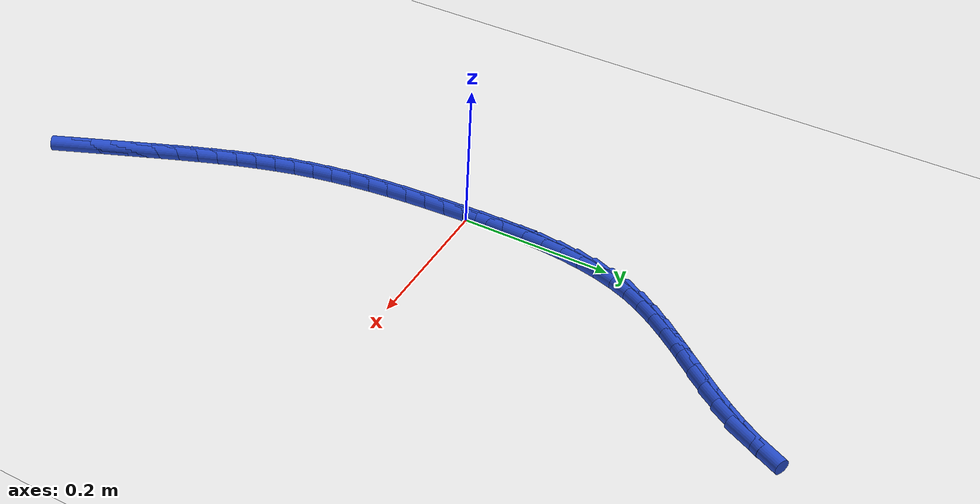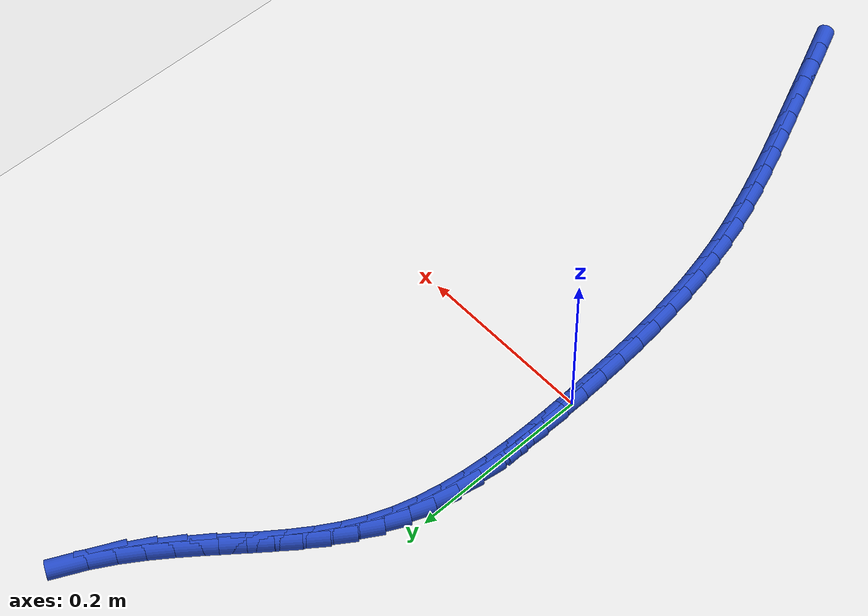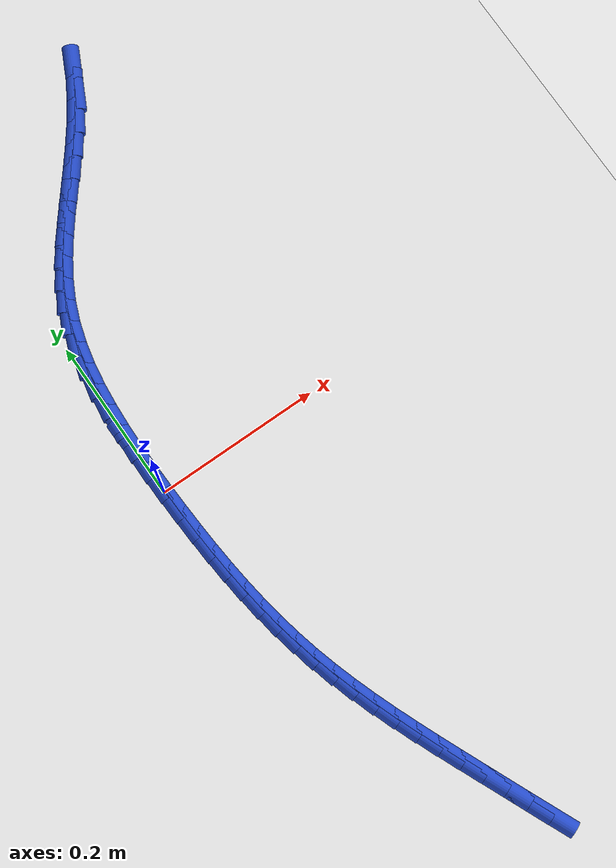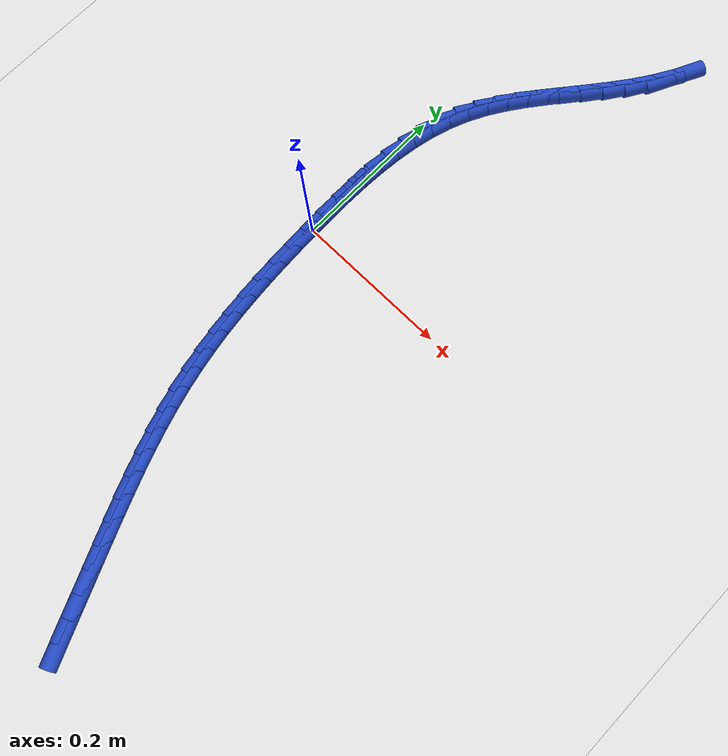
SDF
<sdf version="1.6">
 <world name="default">
  <model name="ground_plane">
   <static>1</static>
   <link name="link">
    <collision name="collision">
     <geometry><plane><normal>0 0 1</normal><size>100 100</size></plane></geometry>
     <surface><friction><ode><mu>100</mu><mu2>50</mu2></ode></friction></surface>
    </collision>
    <visual name="visual">
     <cast_shadows>0</cast_shadows>
     <geometry><plane><normal>0 0 1</normal><size>100 100</size></plane></geometry>
     <material>
      <script><uri>file://media/materials/scripts/gazebo.material</uri><name>Gazebo/WhiteGlow</name></script>
     </material>
    </visual>
   </link>
  </model>
  <model name="line">
   <link name="link_0">
    <pose>-1.5693826446727677e-17 -1.3877787807814457e-17 0.01 0 1.57 -1.5442963593698043</pose>
    <collision name="collision">
     <geometry><cylinder><radius>0.01</radius><length>0.08</length></cylinder></geometry>
    </collision>
    <visual name="visual">
     <material>
      <script><name>Gazebo/Blue</name><uri>file://media/materials/scripts/gazebo.material</uri></script>
     </material>
     <geometry><cylinder><radius>0.01</radius><length>0.08</length></cylinder></geometry>
    </visual>
   </link>
   <link name="link_1">
    <pose>-0.0007509376700477876 0.02833067181607468 0.01 0 1.57 -1.5626476190349388</pose>
    <collision name="collision">
     <geometry><cylinder><radius>0.01</radius><length>0.08</length></cylinder></geometry>
    </collision>
    <visual name="visual">
     <material>
      <script><name>Gazebo/Blue</name><uri>file://media/materials/scripts/gazebo.material</uri></script>
     </material>
     <geometry><cylinder><radius>0.01</radius><length>0.08</length></cylinder></geometry>
    </visual>
   </link>
   <link name="link_2">
    <pose>-0.0009825066827467725 0.056747924464282895 0.01 0 1.57 1.5526250393749008</pose>
    <collision name="collision">
     <geometry><cylinder><radius>0.01</radius><length>0.08</length></cylinder></geometry>
    </collision>
    <visual name="visual">
     <material>
      <script><name>Gazebo/Blue</name><uri>file://media/materials/scripts/gazebo.material</uri></script>
     </material>
     <geometry><cylinder><radius>0.01</radius><length>0.08</length></cylinder></geometry>
    </visual>
   </link>
   <link name="link_3">
    <pose>-0.0004676212184539076 0.08507991768851372 0.01 0 1.57 1.517829657913235</pose>
    <collision name="collision">
     <geometry><cylinder><radius>0.01</radius><length>0.08</length></cylinder></geometry>
    </collision>
    <visual name="visual">
     <material>
      <script><name>Gazebo/Blue</name><uri>file://media/materials/scripts/gazebo.material</uri></script>
     </material>
     <geometry><cylinder><radius>0.01</radius><length>0.08</length></cylinder></geometry>
    </visual>
   </link>
   <link name="link_4">
    <pose>0.0010208045424738691 0.11315481123265635 0.01 0 1.57 1.4738338781834048</pose>
    <collision name="collision">
     <geometry><cylinder><radius>0.01</radius><length>0.08</length></cylinder></geometry>
    </collision>
    <visual name="visual">
     <material>
      <script><name>Gazebo/Blue</name><uri>file://media/materials/scripts/gazebo.material</uri></script>
     </material>
     <geometry><cylinder><radius>0.01</radius><length>0.08</length></cylinder></geometry>
    </visual>
   </link>
   <link name="link_5">
    <pose>0.003709856419679622 0.14080076484059975 0.01 0 1.57 1.4197378369679456</pose>
    <collision name="collision">
     <geometry><cylinder><radius>0.01</radius><length>0.08</length></cylinder></geometry>
    </collision>
    <visual name="visual">
     <material>
      <script><name>Gazebo/Blue</name><uri>file://media/materials/scripts/gazebo.material</uri></script>
     </material>
     <geometry><cylinder><radius>0.01</radius><length>0.08</length></cylinder></geometry>
    </visual>
   </link>
   <link name="link_6">
    <pose>0.007826620232806412 0.16784593825623315 0.01 0 1.57 1.354551010323729</pose>
    <collision name="collision">
     <geometry><cylinder><radius>0.01</radius><length>0.08</length></cylinder></geometry>
    </collision>
    <visual name="visual">
     <material>
      <script><name>Gazebo/Blue</name><uri>file://media/materials/scripts/gazebo.material</uri></script>
     </material>
     <geometry><cylinder><radius>0.01</radius><length>0.08</length></cylinder></geometry>
    </visual>
   </link>
   <link name="link_7">
    <pose>0.013598181801497303 0.19411849122344563 0.01 0 1.57 1.2773478894778796</pose>
    <collision name="collision">
     <geometry><cylinder><radius>0.01</radius><length>0.08</length></cylinder></geometry>
    </collision>
    <visual name="visual">
     <material>
      <script><name>Gazebo/Blue</name><uri>file://media/materials/scripts/gazebo.material</uri></script>
     </material>
     <geometry><cylinder><radius>0.01</radius><length>0.08</length></cylinder></geometry>
    </visual>
   </link>
   <link name="link_8">
    <pose>0.02125162694539536 0.21944658348612625 0.01 0 1.57 1.1875553763427937</pose>
    <collision name="collision">
     <geometry><cylinder><radius>0.01</radius><length>0.08</length></cylinder></geometry>
    </collision>
    <visual name="visual">
     <material>
      <script><name>Gazebo/Blue</name><uri>file://media/materials/scripts/gazebo.material</uri></script>
     </material>
     <geometry><cylinder><radius>0.01</radius><length>0.08</length></cylinder></geometry>
    </visual>
   </link>
   <link name="link_9">
    <pose>0.031013412464680493 0.24365882709709122 0.01 0 1.57 1.0931232626299046</pose>
    <collision name="collision">
     <geometry><cylinder><radius>0.01</radius><length>0.08</length></cylinder></geometry>
    </collision>
    <visual name="visual">
     <material>
      <script><name>Gazebo/Blue</name><uri>file://media/materials/scripts/gazebo.material</uri></script>
     </material>
     <geometry><cylinder><radius>0.01</radius><length>0.08</length></cylinder></geometry>
    </visual>
   </link>
   <link name="link_10">
    <pose>0.04294289728708785 0.2667039891501601 0.01 0 1.57 1.013885816237489</pose>
    <collision name="collision">
     <geometry><cylinder><radius>0.01</radius><length>0.08</length></cylinder></geometry>
    </collision>
    <visual name="visual">
     <material>
      <script><name>Gazebo/Blue</name><uri>file://media/materials/scripts/gazebo.material</uri></script>
     </material>
     <geometry><cylinder><radius>0.01</radius><length>0.08</length></cylinder></geometry>
    </visual>
   </link>
   <link name="link_11">
    <pose>0.0567085049656953 0.2888119465778625 0.01 0 1.57 0.9536576537914302</pose>
    <collision name="collision">
     <geometry><cylinder><radius>0.01</radius><length>0.08</length></cylinder></geometry>
    </collision>
    <visual name="visual">
     <material>
      <script><name>Gazebo/Blue</name><uri>file://media/materials/scripts/gazebo.material</uri></script>
     </material>
     <geometry><cylinder><radius>0.01</radius><length>0.08</length></cylinder></geometry>
    </visual>
   </link>
   <link name="link_12">
    <pose>0.07192283602420142 0.3102527169697327 0.01 0 1.57 0.9124707648080158</pose>
    <collision name="collision">
     <geometry><cylinder><radius>0.01</radius><length>0.08</length></cylinder></geometry>
    </collision>
    <visual name="visual">
     <material>
      <script><name>Gazebo/Blue</name><uri>file://media/materials/scripts/gazebo.material</uri></script>
     </material>
     <geometry><cylinder><radius>0.01</radius><length>0.08</length></cylinder></geometry>
    </visual>
   </link>
   <link name="link_13">
    <pose>0.08819849098630482 0.33129631791530484 0.01 0 1.57 0.8897780737212941</pose>
    <collision name="collision">
     <geometry><cylinder><radius>0.01</radius><length>0.08</length></cylinder></geometry>
    </collision>
    <visual name="visual">
     <material>
      <script><name>Gazebo/Blue</name><uri>file://media/materials/scripts/gazebo.material</uri></script>
     </material>
     <geometry><cylinder><radius>0.01</radius><length>0.08</length></cylinder></geometry>
    </visual>
   </link>
   <link name="link_14">
    <pose>0.10514807037570413 0.3522127670041131 0.01 0 1.57 0.8849031187614891</pose>
    <collision name="collision">
     <geometry><cylinder><radius>0.01</radius><length>0.08</length></cylinder></geometry>
    </collision>
    <visual name="visual">
     <material>
      <script><name>Gazebo/Blue</name><uri>file://media/materials/scripts/gazebo.material</uri></script>
     </material>
     <geometry><cylinder><radius>0.01</radius><length>0.08</length></cylinder></geometry>
    </visual>
   </link>
   <link name="link_15">
    <pose>0.12238417471609796 0.37327208182569166 0.01 0 1.57 0.8972642594297092</pose>
    <collision name="collision">
     <geometry><cylinder><radius>0.01</radius><length>0.08</length></cylinder></geometry>
    </collision>
    <visual name="visual">
     <material>
      <script><name>Gazebo/Blue</name><uri>file://media/materials/scripts/gazebo.material</uri></script>
     </material>
     <geometry><cylinder><radius>0.01</radius><length>0.08</length></cylinder></geometry>
    </visual>
   </link>
   <link name="link_16">
    <pose>0.1395194045311849 0.3947442799695746 0.01 0 1.57 0.9264109444927395</pose>
    <collision name="collision">
     <geometry><cylinder><radius>0.01</radius><length>0.08</length></cylinder></geometry>
    </collision>
    <visual name="visual">
     <material>
      <script><name>Gazebo/Blue</name><uri>file://media/materials/scripts/gazebo.material</uri></script>
     </material>
     <geometry><cylinder><radius>0.01</radius><length>0.08</length></cylinder></geometry>
    </visual>
   </link>
   <link name="link_17">
    <pose>0.1561663603446636 0.41689937902529645 0.01 0 1.57 0.9719103549272091</pose>
    <collision name="collision">
     <geometry><cylinder><radius>0.01</radius><length>0.08</length></cylinder></geometry>
    </collision>
    <visual name="visual">
     <material>
      <script><name>Gazebo/Blue</name><uri>file://media/materials/scripts/gazebo.material</uri></script>
     </material>
     <geometry><cylinder><radius>0.01</radius><length>0.08</length></cylinder></geometry>
    </visual>
   </link>
   <link name="link_18">
    <pose>0.17193764268023265 0.4400073965823911 0.01 0 1.57 1.033112112645418</pose>
    <collision name="collision">
     <geometry><cylinder><radius>0.01</radius><length>0.08</length></cylinder></geometry>
    </collision>
    <visual name="visual">
     <material>
      <script><name>Gazebo/Blue</name><uri>file://media/materials/scripts/gazebo.material</uri></script>
     </material>
     <geometry><cylinder><radius>0.01</radius><length>0.08</length></cylinder></geometry>
    </visual>
   </link>
   <link name="link_19">
    <pose>0.18644585206159064 0.46433835023039277 0.01 0 1.57 1.1088297099244484</pose>
    <collision name="collision">
     <geometry><cylinder><radius>0.01</radius><length>0.08</length></cylinder></geometry>
    </collision>
    <visual name="visual">
     <material>
      <script><name>Gazebo/Blue</name><uri>file://media/materials/scripts/gazebo.material</uri></script>
     </material>
     <geometry><cylinder><radius>0.01</radius><length>0.08</length></cylinder></geometry>
    </visual>
   </link>
   <link name="link_240">
    <pose>0.1410192490895723 -0.5250062341121647 0.01 0 1.57 -1.1544333519528744</pose>
    <collision name="collision">
     <geometry><cylinder><radius>0.01</radius><length>0.08</length></cylinder></geometry>
    </collision>
    <visual name="visual">
     <material>
      <script><name>Gazebo/Blue</name><uri>file://media/materials/scripts/gazebo.material</uri></script>
     </material>
     <geometry><cylinder><radius>0.01</radius><length>0.08</length></cylinder></geometry>
    </visual>
   </link>
   <link name="link_241">
    <pose>0.12976180737772797 -0.49954942166422994 0.01 0 1.57 -1.1587086122136752</pose>
    <collision name="collision">
     <geometry><cylinder><radius>0.01</radius><length>0.08</length></cylinder></geometry>
    </collision>
    <visual name="visual">
     <material>
      <script><name>Gazebo/Blue</name><uri>file://media/materials/scripts/gazebo.material</uri></script>
     </material>
     <geometry><cylinder><radius>0.01</radius><length>0.08</length></cylinder></geometry>
    </visual>
   </link>
   <link name="link_242">
    <pose>0.11861744605852126 -0.4740541923489992 0.01 0 1.57 -1.1588208965407418</pose>
    <collision name="collision">
     <geometry><cylinder><radius>0.01</radius><length>0.08</length></cylinder></geometry>
    </collision>
    <visual name="visual">
     <material>
      <script><name>Gazebo/Blue</name><uri>file://media/materials/scripts/gazebo.material</uri></script>
     </material>
     <geometry><cylinder><radius>0.01</radius><length>0.08</length></cylinder></geometry>
    </visual>
   </link>
   <link name="link_243">
    <pose>0.10749439239021145 -0.4485999215443666 0.01 0 1.57 -1.1597552831748548</pose>
    <collision name="collision">
     <geometry><cylinder><radius>0.01</radius><length>0.08</length></cylinder></geometry>
    </collision>
    <visual name="visual">
     <material>
      <script><name>Gazebo/Blue</name><uri>file://media/materials/scripts/gazebo.material</uri></script>
     </material>
     <geometry><cylinder><radius>0.01</radius><length>0.08</length></cylinder></geometry>
    </visual>
   </link>
   <link name="link_244">
    <pose>0.09642335093374421 -0.42320002018338027 0.01 0 1.57 -1.1650545853164609</pose>
    <collision name="collision">
     <geometry><cylinder><radius>0.01</radius><length>0.08</length></cylinder></geometry>
    </collision>
    <visual name="visual">
     <material>
      <script><name>Gazebo/Blue</name><uri>file://media/materials/scripts/gazebo.material</uri></script>
     </material>
     <geometry><cylinder><radius>0.01</radius><length>0.08</length></cylinder></geometry>
    </visual>
   </link>
   <link name="link_245">
    <pose>0.08552127712359464 -0.3978214457675935 0.01 0 1.57 -1.1748427042571987</pose>
    <collision name="collision">
     <geometry><cylinder><radius>0.01</radius><length>0.08</length></cylinder></geometry>
    </collision>
    <visual name="visual">
     <material>
      <script><name>Gazebo/Blue</name><uri>file://media/materials/scripts/gazebo.material</uri></script>
     </material>
     <geometry><cylinder><radius>0.01</radius><length>0.08</length></cylinder></geometry>
    </visual>
   </link>
   <link name="link_246">
    <pose>0.07490692683360933 -0.3724301861088234 0.01 0 1.57 -1.1891826724940742</pose>
    <collision name="collision">
     <geometry><cylinder><radius>0.01</radius><length>0.08</length></cylinder></geometry>
    </collision>
    <visual name="visual">
     <material>
      <script><name>Gazebo/Blue</name><uri>file://media/materials/scripts/gazebo.material</uri></script>
     </material>
     <geometry><cylinder><radius>0.01</radius><length>0.08</length></cylinder></geometry>
    </visual>
   </link>
   <link name="link_247">
    <pose>0.06469905593763396 -0.34699222901888543 0.01 0 1.57 -1.208144477011586</pose>
    <collision name="collision">
     <geometry><cylinder><radius>0.01</radius><length>0.08</length></cylinder></geometry>
    </collision>
    <visual name="visual">
     <material>
      <script><name>Gazebo/Blue</name><uri>file://media/materials/scripts/gazebo.material</uri></script>
     </material>
     <geometry><cylinder><radius>0.01</radius><length>0.08</length></cylinder></geometry>
    </visual>
   </link>
   <link name="link_248">
    <pose>0.05501642030951446 -0.3214735623095956 0.01 0 1.57 -1.231796314345632</pose>
    <collision name="collision">
     <geometry><cylinder><radius>0.01</radius><length>0.08</length></cylinder></geometry>
    </collision>
    <visual name="visual">
     <material>
      <script><name>Gazebo/Blue</name><uri>file://media/materials/scripts/gazebo.material</uri></script>
     </material>
     <geometry><cylinder><radius>0.01</radius><length>0.08</length></cylinder></geometry>
    </visual>
   </link>
   <link name="link_249">
    <pose>0.04597777582309681 -0.29584017379277 0.01 0 1.57 -1.2601922956979734</pose>
    <collision name="collision">
     <geometry><cylinder><radius>0.01</radius><length>0.08</length></cylinder></geometry>
    </collision>
    <visual name="visual">
     <material>
      <script><name>Gazebo/Blue</name><uri>file://media/materials/scripts/gazebo.material</uri></script>
     </material>
     <geometry><cylinder><radius>0.01</radius><length>0.08</length></cylinder></geometry>
    </visual>
   </link>
   <link name="link_250">
    <pose>0.037701878352226964 -0.27005805128022425 0.01 0 1.57 -1.2933564053162658</pose>
    <collision name="collision">
     <geometry><cylinder><radius>0.01</radius><length>0.08</length></cylinder></geometry>
    </collision>
    <visual name="visual">
     <material>
      <script><name>Gazebo/Blue</name><uri>file://media/materials/scripts/gazebo.material</uri></script>
     </material>
     <geometry><cylinder><radius>0.01</radius><length>0.08</length></cylinder></geometry>
    </visual>
   </link>
   <link name="link_251">
    <pose>0.0303074837707509 -0.24409318258377474 0.01 0 1.57 -1.3305790753368576</pose>
    <collision name="collision">
     <geometry><cylinder><radius>0.01</radius><length>0.08</length></cylinder></geometry>
    </collision>
    <visual name="visual">
     <material>
      <script><name>Gazebo/Blue</name><uri>file://media/materials/scripts/gazebo.material</uri></script>
     </material>
     <geometry><cylinder><radius>0.01</radius><length>0.08</length></cylinder></geometry>
    </visual>
   </link>
   <link name="link_252">
    <pose>0.023895040791332364 -0.21791428026266593 0.01 0 1.57 -1.3669556831145553</pose>
    <collision name="collision">
     <geometry><cylinder><radius>0.01</radius><length>0.08</length></cylinder></geometry>
    </collision>
    <visual name="visual">
     <material>
      <script><name>Gazebo/Blue</name><uri>file://media/materials/scripts/gazebo.material</uri></script>
     </material>
     <geometry><cylinder><radius>0.01</radius><length>0.08</length></cylinder></geometry>
    </visual>
   </link>
   <link name="link_253">
    <pose>0.018436790879640882 -0.19150913860941937 0.01 0 1.57 -1.4002689635914007</pose>
    <collision name="collision">
     <geometry><cylinder><radius>0.01</radius><length>0.08</length></cylinder></geometry>
    </collision>
    <visual name="visual">
     <material>
      <script><name>Gazebo/Blue</name><uri>file://media/materials/scripts/gazebo.material</uri></script>
     </material>
     <geometry><cylinder><radius>0.01</radius><length>0.08</length></cylinder></geometry>
    </visual>
   </link>
   <link name="link_254">
    <pose>0.013850175757977081 -0.16487370803963589 0.01 0 1.57 -1.4303872599138778</pose>
    <collision name="collision">
     <geometry><cylinder><radius>0.01</radius><length>0.08</length></cylinder></geometry>
    </collision>
    <visual name="visual">
     <material>
      <script><name>Gazebo/Blue</name><uri>file://media/materials/scripts/gazebo.material</uri></script>
     </material>
     <geometry><cylinder><radius>0.01</radius><length>0.08</length></cylinder></geometry>
    </visual>
   </link>
   <link name="link_255">
    <pose>0.010052430861723543 -0.13800396967164294 0.01 0 1.57 -1.4572382968859363</pose>
    <collision name="collision">
     <geometry><cylinder><radius>0.01</radius><length>0.08</length></cylinder></geometry>
    </collision>
    <visual name="visual">
     <material>
      <script><name>Gazebo/Blue</name><uri>file://media/materials/scripts/gazebo.material</uri></script>
     </material>
     <geometry><cylinder><radius>0.01</radius><length>0.08</length></cylinder></geometry>
    </visual>
   </link>
   <link name="link_256">
    <pose>0.0069607916262628446 -0.11089590462376818 0.01 0 1.57 -1.4807929383437963</pose>
    <collision name="collision">
     <geometry><cylinder><radius>0.01</radius><length>0.08</length></cylinder></geometry>
    </collision>
    <visual name="visual">
     <material>
      <script><name>Gazebo/Blue</name><uri>file://media/materials/scripts/gazebo.material</uri></script>
     </material>
     <geometry><cylinder><radius>0.01</radius><length>0.08</length></cylinder></geometry>
    </visual>
   </link>
   <link name="link_257">
    <pose>0.004492493486977567 -0.08354549401433904 0.01 0 1.57 -1.5010564627448642</pose>
    <collision name="collision">
     <geometry><cylinder><radius>0.01</radius><length>0.08</length></cylinder></geometry>
    </collision>
    <visual name="visual">
     <material>
      <script><name>Gazebo/Blue</name><uri>file://media/materials/scripts/gazebo.material</uri></script>
     </material>
     <geometry><cylinder><radius>0.01</radius><length>0.08</length></cylinder></geometry>
    </visual>
   </link>
   <link name="link_258">
    <pose>0.002564771879250279 -0.05594871896168295 0.01 0 1.57 -1.5180603627944813</pose>
    <collision name="collision">
     <geometry><cylinder><radius>0.01</radius><length>0.08</length></cylinder></geometry>
    </collision>
    <visual name="visual">
     <material>
      <script><name>Gazebo/Blue</name><uri>file://media/materials/scripts/gazebo.material</uri></script>
     </material>
     <geometry><cylinder><radius>0.01</radius><length>0.08</length></cylinder></geometry>
    </visual>
   </link>
   <link name="link_259">
    <pose>0.0010948622384635608 -0.02810156058412748 0.01 0 1.57 -1.5318551172357895</pose>
    <collision name="collision">
     <geometry><cylinder><radius>0.01</radius><length>0.08</length></cylinder></geometry>
    </collision>
    <visual name="visual">
     <material>
      <script><name>Gazebo/Blue</name><uri>file://media/materials/scripts/gazebo.material</uri></script>
     </material>
     <geometry><cylinder><radius>0.01</radius><length>0.08</length></cylinder></geometry>
    </visual>
   </link>
   <link name="link_260">
    <pose>-1.2637731573034161e-17 -8.326672684688674e-17 0.01 0 1.57 -1.5425041629294436</pose>
    <collision name="collision">
     <geometry><cylinder><radius>0.01</radius><length>0.08</length></cylinder></geometry>
    </collision>
    <visual name="visual">
     <material>
      <script><name>Gazebo/Blue</name><uri>file://media/materials/scripts/gazebo.material</uri></script>
     </material>
     <geometry><cylinder><radius>0.01</radius><length>0.08</length></cylinder></geometry>
    </visual>
   </link>
   <link name="link_261">
    <pose>-0.0008025794007578633 0.028359981672371703 0.01 0 1.57 -1.550079132248999</pose>
    <collision name="collision">
     <geometry><cylinder><radius>0.01</radius><length>0.08</length></cylinder></geometry>
    </collision>
    <visual name="visual">
     <material>
      <script><name>Gazebo/Blue</name><uri>file://media/materials/scripts/gazebo.material</uri></script>
     </material>
     <geometry><cylinder><radius>0.01</radius><length>0.08</length></cylinder></geometry>
    </visual>
   </link>
   <link name="link_262">
    <pose>-0.0013956405284274156 0.05698240331466044 0.01 0 1.57 -1.5463087398454631</pose>
    <collision name="collision">
     <geometry><cylinder><radius>0.01</radius><length>0.08</length></cylinder></geometry>
    </collision>
    <visual name="visual">
     <material>
      <script><name>Gazebo/Blue</name><uri>file://media/materials/scripts/gazebo.material</uri></script>
     </material>
     <geometry><cylinder><radius>0.01</radius><length>0.08</length></cylinder></geometry>
    </visual>
   </link>
  </model>
 </world>
</sdf>
